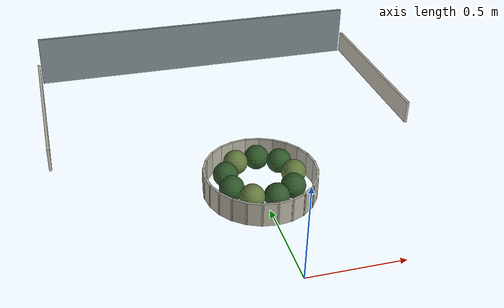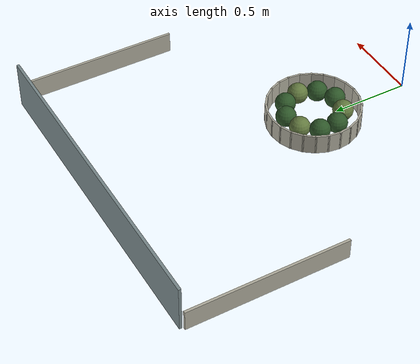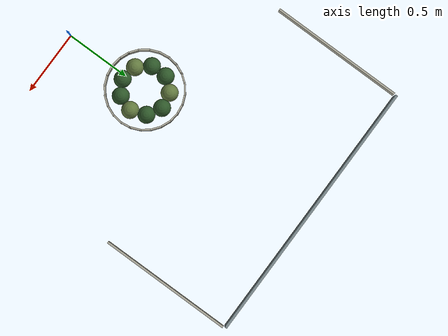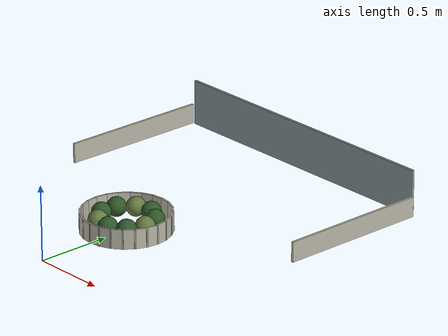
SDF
<sdf version="1.6">
 <world name="sandbox">
  <include><uri>model://sun</uri></include>
  <model name="central_island_landscape">
   <static>true</static>
   <link name="body">
    <collision name="collision_1">
     <pose>0.287025 0.712788 0.070000 0.000000 -0.000000 1.701696</pose>
     <geometry><box><size>0.088227 0.012000 0.130000</size></box></geometry>
    </collision>
    <visual name="visual_1">
     <pose>0.287025 0.712788 0.070000 0.000000 -0.000000 1.701696</pose>
     <geometry><box><size>0.088227 0.012000 0.130000</size></box></geometry>
     <material><ambient>0.69 0.68 0.62 1</ambient><diffuse>0.69 0.68 0.62 1</diffuse></material>
    </visual>
    <collision name="collision_3">
     <pose>0.267465 0.785788 0.070000 0.000000 -0.000000 1.963495</pose>
     <geometry><box><size>0.088227 0.012000 0.130000</size></box></geometry>
    </collision>
    <visual name="visual_3">
     <pose>0.267465 0.785788 0.070000 0.000000 -0.000000 1.963495</pose>
     <geometry><box><size>0.088227 0.012000 0.130000</size></box></geometry>
     <material><ambient>0.69 0.68 0.62 1</ambient><diffuse>0.69 0.68 0.62 1</diffuse></material>
    </visual>
    <collision name="collision_5">
     <pose>0.229677 0.851238 0.070000 0.000000 -0.000000 2.225295</pose>
     <geometry><box><size>0.088227 0.012000 0.130000</size></box></geometry>
    </collision>
    <visual name="visual_5">
     <pose>0.229677 0.851238 0.070000 0.000000 -0.000000 2.225295</pose>
     <geometry><box><size>0.088227 0.012000 0.130000</size></box></geometry>
     <material><ambient>0.69 0.68 0.62 1</ambient><diffuse>0.69 0.68 0.62 1</diffuse></material>
    </visual>
    <collision name="collision_7">
     <pose>0.176238 0.904677 0.070000 0.000000 -0.000000 2.487094</pose>
     <geometry><box><size>0.088227 0.012000 0.130000</size></box></geometry>
    </collision>
    <visual name="visual_7">
     <pose>0.176238 0.904677 0.070000 0.000000 -0.000000 2.487094</pose>
     <geometry><box><size>0.088227 0.012000 0.130000</size></box></geometry>
     <material><ambient>0.69 0.68 0.62 1</ambient><diffuse>0.69 0.68 0.62 1</diffuse></material>
    </visual>
    <collision name="collision_9">
     <pose>0.110788 0.942465 0.070000 0.000000 -0.000000 2.748894</pose>
     <geometry><box><size>0.088227 0.012000 0.130000</size></box></geometry>
    </collision>
    <visual name="visual_9">
     <pose>0.110788 0.942465 0.070000 0.000000 -0.000000 2.748894</pose>
     <geometry><box><size>0.088227 0.012000 0.130000</size></box></geometry>
     <material><ambient>0.69 0.68 0.62 1</ambient><diffuse>0.69 0.68 0.62 1</diffuse></material>
    </visual>
    <collision name="collision_11">
     <pose>0.037788 0.962025 0.070000 0.000000 -0.000000 3.010693</pose>
     <geometry><box><size>0.088227 0.012000 0.130000</size></box></geometry>
    </collision>
    <visual name="visual_11">
     <pose>0.037788 0.962025 0.070000 0.000000 -0.000000 3.010693</pose>
     <geometry><box><size>0.088227 0.012000 0.130000</size></box></geometry>
     <material><ambient>0.69 0.68 0.62 1</ambient><diffuse>0.69 0.68 0.62 1</diffuse></material>
    </visual>
    <collision name="collision_13">
     <pose>-0.037788 0.962025 0.070000 0.000000 -0.000000 -3.010693</pose>
     <geometry><box><size>0.088227 0.012000 0.130000</size></box></geometry>
    </collision>
    <visual name="visual_13">
     <pose>-0.037788 0.962025 0.070000 0.000000 -0.000000 -3.010693</pose>
     <geometry><box><size>0.088227 0.012000 0.130000</size></box></geometry>
     <material><ambient>0.69 0.68 0.62 1</ambient><diffuse>0.69 0.68 0.62 1</diffuse></material>
    </visual>
    <collision name="collision_15">
     <pose>-0.110788 0.942465 0.070000 0.000000 -0.000000 -2.748894</pose>
     <geometry><box><size>0.088227 0.012000 0.130000</size></box></geometry>
    </collision>
    <visual name="visual_15">
     <pose>-0.110788 0.942465 0.070000 0.000000 -0.000000 -2.748894</pose>
     <geometry><box><size>0.088227 0.012000 0.130000</size></box></geometry>
     <material><ambient>0.69 0.68 0.62 1</ambient><diffuse>0.69 0.68 0.62 1</diffuse></material>
    </visual>
    <collision name="collision_17">
     <pose>-0.176238 0.904677 0.070000 0.000000 -0.000000 -2.487094</pose>
     <geometry><box><size>0.088227 0.012000 0.130000</size></box></geometry>
    </collision>
    <visual name="visual_17">
     <pose>-0.176238 0.904677 0.070000 0.000000 -0.000000 -2.487094</pose>
     <geometry><box><size>0.088227 0.012000 0.130000</size></box></geometry>
     <material><ambient>0.69 0.68 0.62 1</ambient><diffuse>0.69 0.68 0.62 1</diffuse></material>
    </visual>
    <collision name="collision_19">
     <pose>-0.229677 0.851238 0.070000 0.000000 -0.000000 -2.225295</pose>
     <geometry><box><size>0.088227 0.012000 0.130000</size></box></geometry>
    </collision>
    <visual name="visual_19">
     <pose>-0.229677 0.851238 0.070000 0.000000 -0.000000 -2.225295</pose>
     <geometry><box><size>0.088227 0.012000 0.130000</size></box></geometry>
     <material><ambient>0.69 0.68 0.62 1</ambient><diffuse>0.69 0.68 0.62 1</diffuse></material>
    </visual>
    <collision name="collision_21">
     <pose>-0.267465 0.785788 0.070000 0.000000 -0.000000 -1.963495</pose>
     <geometry><box><size>0.088227 0.012000 0.130000</size></box></geometry>
    </collision>
    <visual name="visual_21">
     <pose>-0.267465 0.785788 0.070000 0.000000 -0.000000 -1.963495</pose>
     <geometry><box><size>0.088227 0.012000 0.130000</size></box></geometry>
     <material><ambient>0.69 0.68 0.62 1</ambient><diffuse>0.69 0.68 0.62 1</diffuse></material>
    </visual>
    <collision name="collision_23">
     <pose>-0.287025 0.712788 0.070000 0.000000 -0.000000 -1.701696</pose>
     <geometry><box><size>0.088227 0.012000 0.130000</size></box></geometry>
    </collision>
    <visual name="visual_23">
     <pose>-0.287025 0.712788 0.070000 0.000000 -0.000000 -1.701696</pose>
     <geometry><box><size>0.088227 0.012000 0.130000</size></box></geometry>
     <material><ambient>0.69 0.68 0.62 1</ambient><diffuse>0.69 0.68 0.62 1</diffuse></material>
    </visual>
    <collision name="collision_25">
     <pose>-0.287025 0.637212 0.070000 0.000000 -0.000000 -1.439897</pose>
     <geometry><box><size>0.088227 0.012000 0.130000</size></box></geometry>
    </collision>
    <visual name="visual_25">
     <pose>-0.287025 0.637212 0.070000 0.000000 -0.000000 -1.439897</pose>
     <geometry><box><size>0.088227 0.012000 0.130000</size></box></geometry>
     <material><ambient>0.69 0.68 0.62 1</ambient><diffuse>0.69 0.68 0.62 1</diffuse></material>
    </visual>
    <collision name="collision_27">
     <pose>-0.267465 0.564212 0.070000 0.000000 -0.000000 -1.178097</pose>
     <geometry><box><size>0.088227 0.012000 0.130000</size></box></geometry>
    </collision>
    <visual name="visual_27">
     <pose>-0.267465 0.564212 0.070000 0.000000 -0.000000 -1.178097</pose>
     <geometry><box><size>0.088227 0.012000 0.130000</size></box></geometry>
     <material><ambient>0.69 0.68 0.62 1</ambient><diffuse>0.69 0.68 0.62 1</diffuse></material>
    </visual>
    <collision name="collision_29">
     <pose>-0.229677 0.498762 0.070000 0.000000 -0.000000 -0.916298</pose>
     <geometry><box><size>0.088227 0.012000 0.130000</size></box></geometry>
    </collision>
    <visual name="visual_29">
     <pose>-0.229677 0.498762 0.070000 0.000000 -0.000000 -0.916298</pose>
     <geometry><box><size>0.088227 0.012000 0.130000</size></box></geometry>
     <material><ambient>0.69 0.68 0.62 1</ambient><diffuse>0.69 0.68 0.62 1</diffuse></material>
    </visual>
    <collision name="collision_31">
     <pose>-0.176238 0.445323 0.070000 0.000000 -0.000000 -0.654498</pose>
     <geometry><box><size>0.088227 0.012000 0.130000</size></box></geometry>
    </collision>
    <visual name="visual_31">
     <pose>-0.176238 0.445323 0.070000 0.000000 -0.000000 -0.654498</pose>
     <geometry><box><size>0.088227 0.012000 0.130000</size></box></geometry>
     <material><ambient>0.69 0.68 0.62 1</ambient><diffuse>0.69 0.68 0.62 1</diffuse></material>
    </visual>
    <collision name="collision_33">
     <pose>-0.110788 0.407535 0.070000 0.000000 -0.000000 -0.392699</pose>
     <geometry><box><size>0.088227 0.012000 0.130000</size></box></geometry>
    </collision>
    <visual name="visual_33">
     <pose>-0.110788 0.407535 0.070000 0.000000 -0.000000 -0.392699</pose>
     <geometry><box><size>0.088227 0.012000 0.130000</size></box></geometry>
     <material><ambient>0.69 0.68 0.62 1</ambient><diffuse>0.69 0.68 0.62 1</diffuse></material>
    </visual>
    <collision name="collision_35">
     <pose>-0.037788 0.387975 0.070000 0.000000 -0.000000 -0.130900</pose>
     <geometry><box><size>0.088227 0.012000 0.130000</size></box></geometry>
    </collision>
    <visual name="visual_35">
     <pose>-0.037788 0.387975 0.070000 0.000000 -0.000000 -0.130900</pose>
     <geometry><box><size>0.088227 0.012000 0.130000</size></box></geometry>
     <material><ambient>0.69 0.68 0.62 1</ambient><diffuse>0.69 0.68 0.62 1</diffuse></material>
    </visual>
    <collision name="collision_37">
     <pose>0.037788 0.387975 0.070000 0.000000 -0.000000 0.130900</pose>
     <geometry><box><size>0.088227 0.012000 0.130000</size></box></geometry>
    </collision>
    <visual name="visual_37">
     <pose>0.037788 0.387975 0.070000 0.000000 -0.000000 0.130900</pose>
     <geometry><box><size>0.088227 0.012000 0.130000</size></box></geometry>
     <material><ambient>0.69 0.68 0.62 1</ambient><diffuse>0.69 0.68 0.62 1</diffuse></material>
    </visual>
    <collision name="collision_39">
     <pose>0.110788 0.407535 0.070000 0.000000 -0.000000 0.392699</pose>
     <geometry><box><size>0.088227 0.012000 0.130000</size></box></geometry>
    </collision>
    <visual name="visual_39">
     <pose>0.110788 0.407535 0.070000 0.000000 -0.000000 0.392699</pose>
     <geometry><box><size>0.088227 0.012000 0.130000</size></box></geometry>
     <material><ambient>0.69 0.68 0.62 1</ambient><diffuse>0.69 0.68 0.62 1</diffuse></material>
    </visual>
    <collision name="collision_41">
     <pose>0.176238 0.445323 0.070000 0.000000 -0.000000 0.654498</pose>
     <geometry><box><size>0.088227 0.012000 0.130000</size></box></geometry>
    </collision>
    <visual name="visual_41">
     <pose>0.176238 0.445323 0.070000 0.000000 -0.000000 0.654498</pose>
     <geometry><box><size>0.088227 0.012000 0.130000</size></box></geometry>
     <material><ambient>0.69 0.68 0.62 1</ambient><diffuse>0.69 0.68 0.62 1</diffuse></material>
    </visual>
    <collision name="collision_43">
     <pose>0.229677 0.498762 0.070000 0.000000 -0.000000 0.916298</pose>
     <geometry><box><size>0.088227 0.012000 0.130000</size></box></geometry>
    </collision>
    <visual name="visual_43">
     <pose>0.229677 0.498762 0.070000 0.000000 -0.000000 0.916298</pose>
     <geometry><box><size>0.088227 0.012000 0.130000</size></box></geometry>
     <material><ambient>0.69 0.68 0.62 1</ambient><diffuse>0.69 0.68 0.62 1</diffuse></material>
    </visual>
    <collision name="collision_45">
     <pose>0.267465 0.564212 0.070000 0.000000 -0.000000 1.178097</pose>
     <geometry><box><size>0.088227 0.012000 0.130000</size></box></geometry>
    </collision>
    <visual name="visual_45">
     <pose>0.267465 0.564212 0.070000 0.000000 -0.000000 1.178097</pose>
     <geometry><box><size>0.088227 0.012000 0.130000</size></box></geometry>
     <material><ambient>0.69 0.68 0.62 1</ambient><diffuse>0.69 0.68 0.62 1</diffuse></material>
    </visual>
    <collision name="collision_47">
     <pose>0.287025 0.637212 0.070000 0.000000 -0.000000 1.439897</pose>
     <geometry><box><size>0.088227 0.012000 0.130000</size></box></geometry>
    </collision>
    <visual name="visual_47">
     <pose>0.287025 0.637212 0.070000 0.000000 -0.000000 1.439897</pose>
     <geometry><box><size>0.088227 0.012000 0.130000</size></box></geometry>
     <material><ambient>0.69 0.68 0.62 1</ambient><diffuse>0.69 0.68 0.62 1</diffuse></material>
    </visual>
    <visual name="visual_49">
     <pose>0.180000 0.675000 0.090000 0.000000 0.000000 0.000000</pose>
     <geometry><sphere><radius>0.065000</radius></sphere></geometry>
     <material><ambient>0.39 0.48 0.25 1</ambient><diffuse>0.39 0.48 0.25 1</diffuse></material>
    </visual>
    <visual name="visual_50">
     <pose>0.137888 0.790702 0.090000 0.000000 0.000000 0.000000</pose>
     <geometry><sphere><radius>0.065000</radius></sphere></geometry>
     <material><ambient>0.18 0.34 0.16 1</ambient><diffuse>0.18 0.34 0.16 1</diffuse></material>
    </visual>
    <visual name="visual_51">
     <pose>0.031257 0.852265 0.090000 0.000000 0.000000 0.000000</pose>
     <geometry><sphere><radius>0.065000</radius></sphere></geometry>
     <material><ambient>0.18 0.34 0.16 1</ambient><diffuse>0.18 0.34 0.16 1</diffuse></material>
    </visual>
    <visual name="visual_52">
     <pose>-0.090000 0.830885 0.090000 0.000000 0.000000 0.000000</pose>
     <geometry><sphere><radius>0.065000</radius></sphere></geometry>
     <material><ambient>0.39 0.48 0.25 1</ambient><diffuse>0.39 0.48 0.25 1</diffuse></material>
    </visual>
    <visual name="visual_53">
     <pose>-0.169145 0.736564 0.090000 0.000000 0.000000 0.000000</pose>
     <geometry><sphere><radius>0.065000</radius></sphere></geometry>
     <material><ambient>0.18 0.34 0.16 1</ambient><diffuse>0.18 0.34 0.16 1</diffuse></material>
    </visual>
    <visual name="visual_54">
     <pose>-0.169145 0.613436 0.090000 0.000000 0.000000 0.000000</pose>
     <geometry><sphere><radius>0.065000</radius></sphere></geometry>
     <material><ambient>0.18 0.34 0.16 1</ambient><diffuse>0.18 0.34 0.16 1</diffuse></material>
    </visual>
    <visual name="visual_55">
     <pose>-0.090000 0.519115 0.090000 0.000000 0.000000 0.000000</pose>
     <geometry><sphere><radius>0.065000</radius></sphere></geometry>
     <material><ambient>0.39 0.48 0.25 1</ambient><diffuse>0.39 0.48 0.25 1</diffuse></material>
    </visual>
    <visual name="visual_56">
     <pose>0.031257 0.497735 0.090000 0.000000 0.000000 0.000000</pose>
     <geometry><sphere><radius>0.065000</radius></sphere></geometry>
     <material><ambient>0.18 0.34 0.16 1</ambient><diffuse>0.18 0.34 0.16 1</diffuse></material>
    </visual>
    <visual name="visual_57">
     <pose>0.137888 0.559298 0.090000 0.000000 0.000000 0.000000</pose>
     <geometry><sphere><radius>0.065000</radius></sphere></geometry>
     <material><ambient>0.18 0.34 0.16 1</ambient><diffuse>0.18 0.34 0.16 1</diffuse></material>
    </visual>
   </link>
  </model>
  <model name="parking_lidar_edges">
   <static>true</static>
   <link name="body">
    <collision name="collision_1">
     <pose>0.000000 2.160000 0.155000 0.000000 -0.000000 0.000000</pose>
     <geometry><box><size>2.062000 0.018000 0.310000</size></box></geometry>
    </collision>
    <visual name="visual_1">
     <pose>0.000000 2.160000 0.155000 0.000000 -0.000000 0.000000</pose>
     <geometry><box><size>2.062000 0.018000 0.310000</size></box></geometry>
     <material><ambient>0.48 0.54 0.55 1</ambient><diffuse>0.48 0.54 0.55 1</diffuse></material>
    </visual>
    <collision name="collision_3">
     <pose>-1.045000 1.630000 0.072500 0.000000 -0.000000 1.570796</pose>
     <geometry><box><size>1.032000 0.016000 0.135000</size></box></geometry>
    </collision>
    <visual name="visual_3">
     <pose>-1.045000 1.630000 0.072500 0.000000 -0.000000 1.570796</pose>
     <geometry><box><size>1.032000 0.016000 0.135000</size></box></geometry>
     <material><ambient>0.69 0.68 0.62 1</ambient><diffuse>0.69 0.68 0.62 1</diffuse></material>
    </visual>
    <collision name="collision_5">
     <pose>1.045000 1.630000 0.072500 0.000000 -0.000000 1.570796</pose>
     <geometry><box><size>1.032000 0.016000 0.135000</size></box></geometry>
    </collision>
    <visual name="visual_5">
     <pose>1.045000 1.630000 0.072500 0.000000 -0.000000 1.570796</pose>
     <geometry><box><size>1.032000 0.016000 0.135000</size></box></geometry>
     <material><ambient>0.69 0.68 0.62 1</ambient><diffuse>0.69 0.68 0.62 1</diffuse></material>
    </visual>
   </link>
  </model>
 </world>
</sdf>
